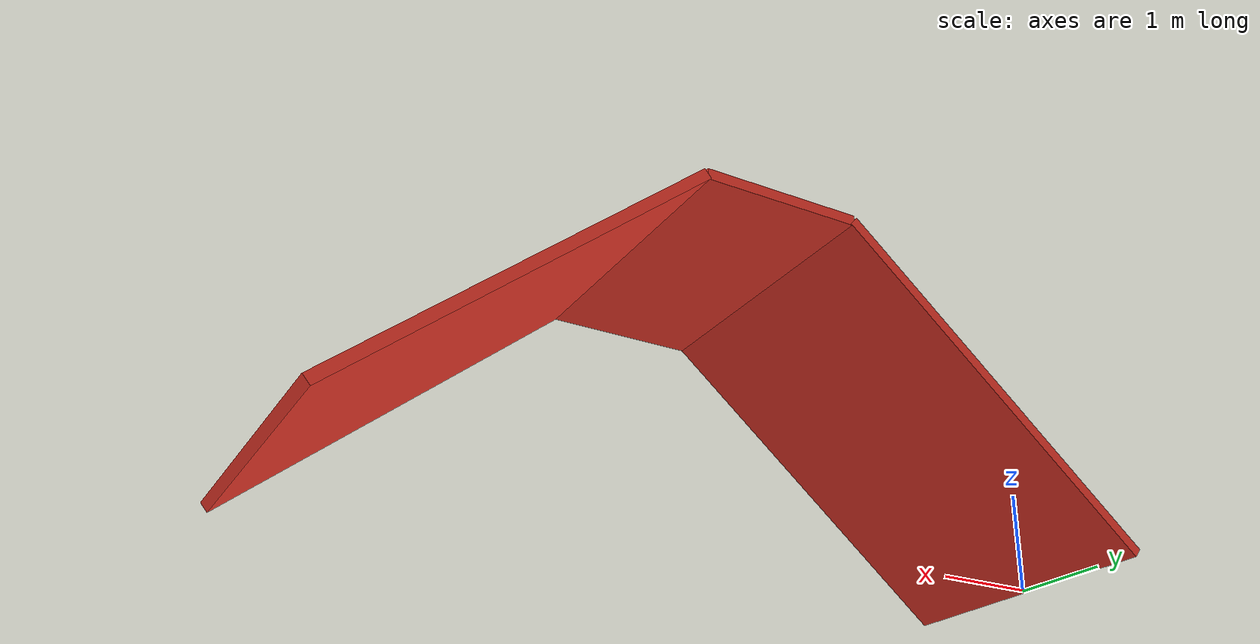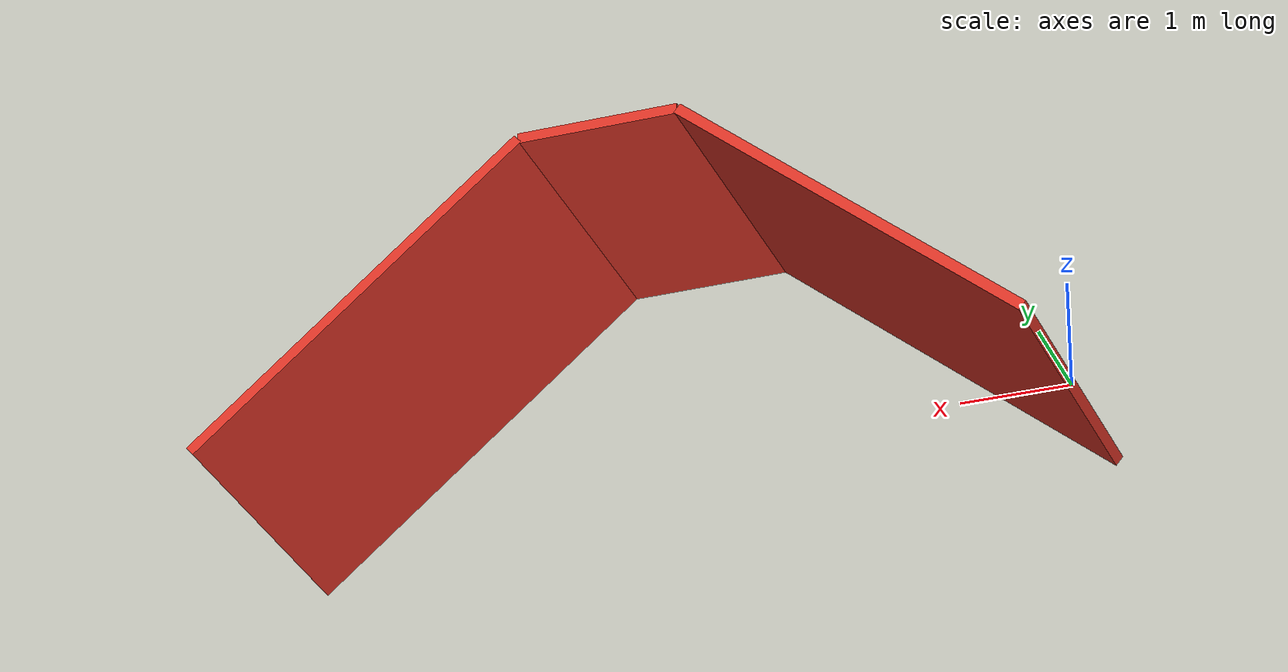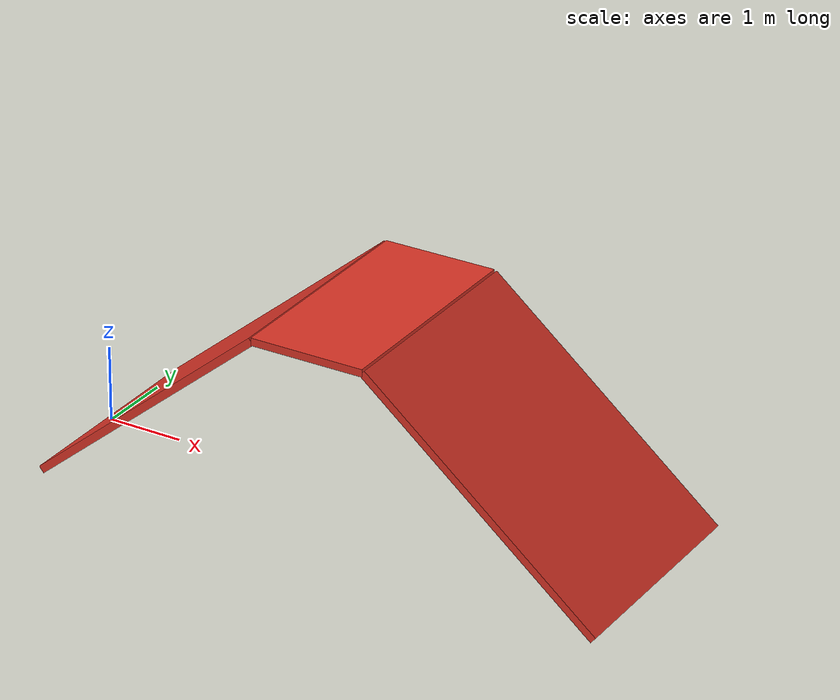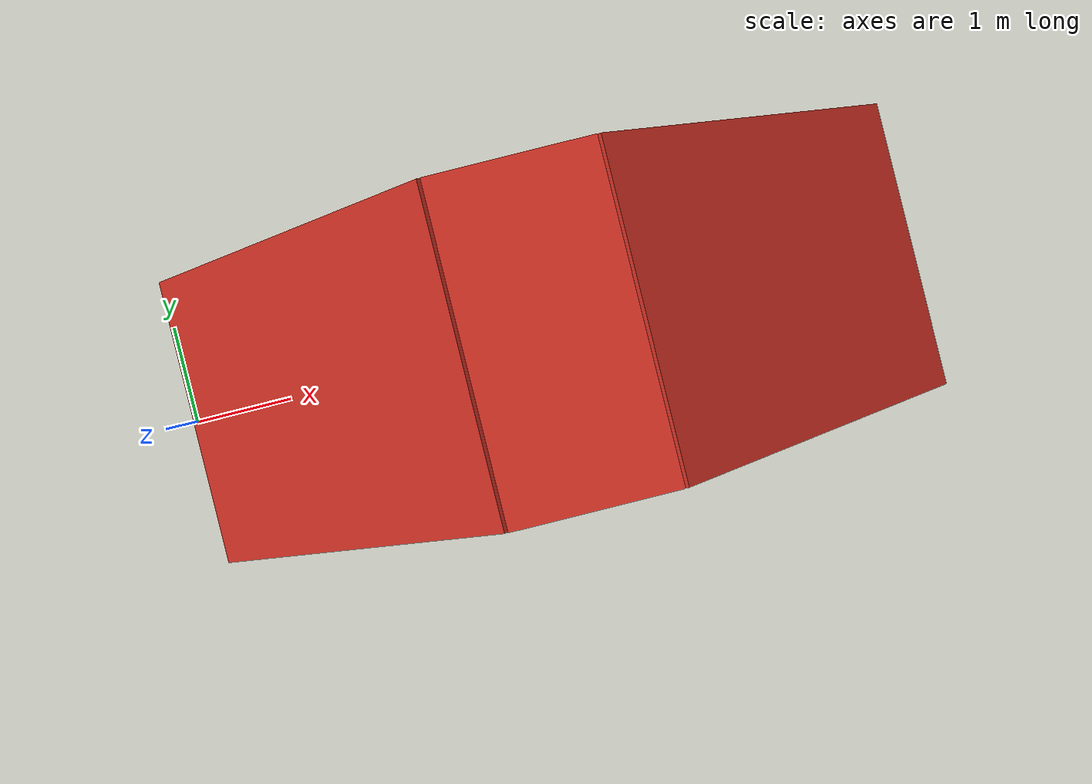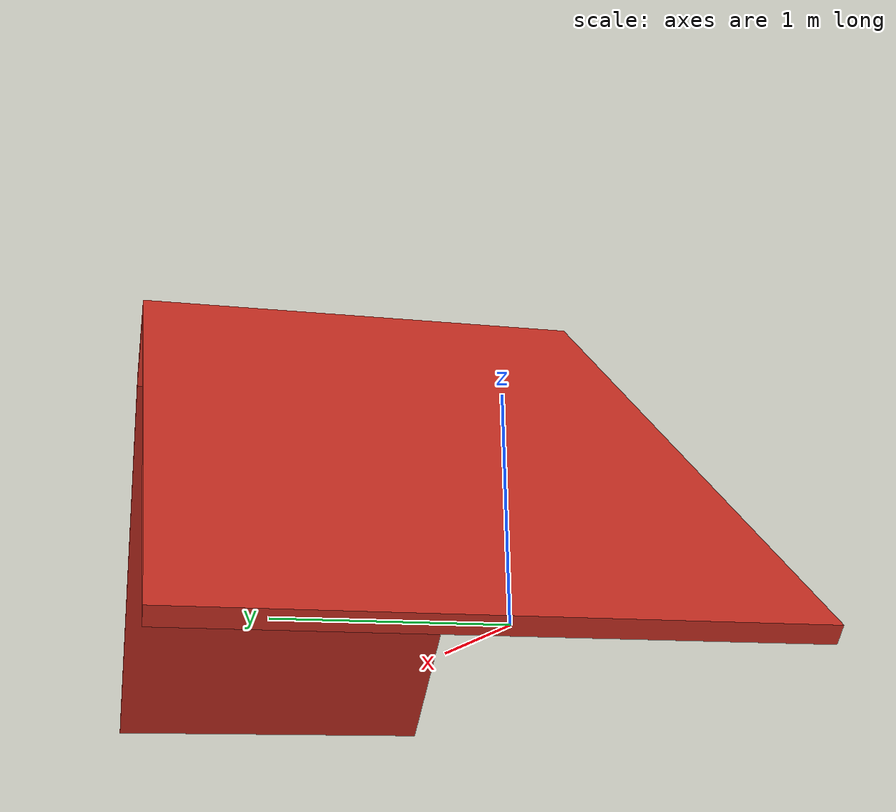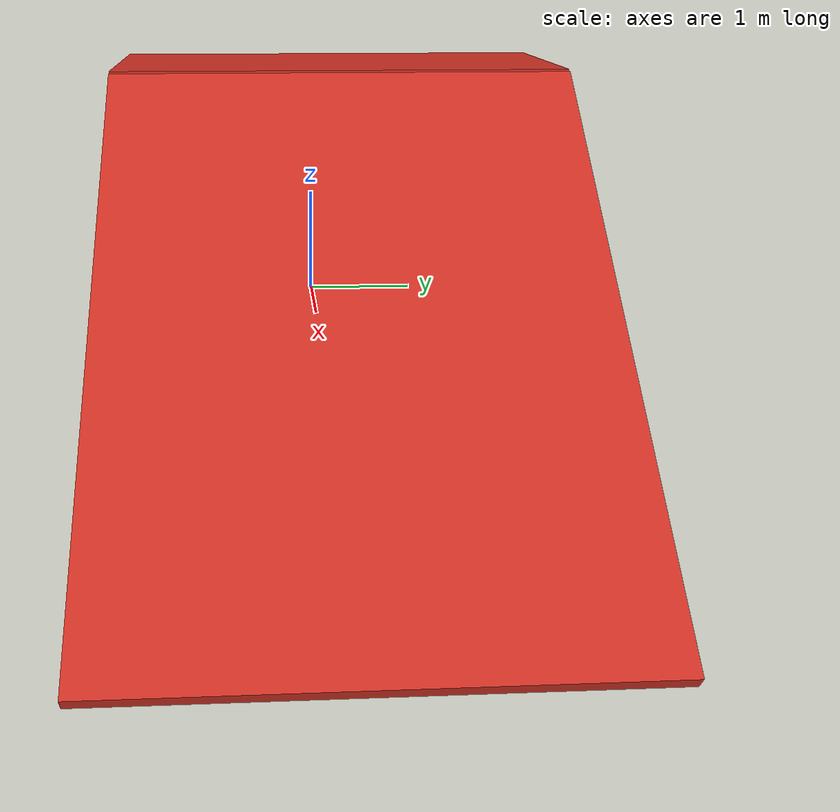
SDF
<?xml version="1.0" ?>
<sdf version="1.9">
  <model name="ramp_040">
    <static>true</static>
    <link name="link">

      <!-- 각도: 40.0도 / 경사면 길이: 4.0m / 높이(H)=2.5712m / 수평거리(D)=3.0642m -->

      <collision name="up_collision">
        <pose>1.5321 0 1.2856 0 -0.698132 0</pose>
        <geometry><box><size>4.0 3.0 0.1</size></box></geometry>
      </collision>
      <visual name="up_visual">
        <pose>1.5321 0 1.2856 0 -0.698132 0</pose>
        <geometry><box><size>4.0 3.0 0.1</size></box></geometry>
        <material><ambient>0.8 0.15 0.1 1</ambient><diffuse>0.85 0.2 0.15 1</diffuse></material>
      </visual>

      <collision name="flat_collision">
        <pose>3.8142 0 2.5712 0 0 0</pose>
        <geometry><box><size>1.5 3.0 0.1</size></box></geometry>
      </collision>
      <visual name="flat_visual">
        <pose>3.8142 0 2.5712 0 0 0</pose>
        <geometry><box><size>1.5 3.0 0.1</size></box></geometry>
        <material><ambient>0.8 0.15 0.1 1</ambient><diffuse>0.85 0.2 0.15 1</diffuse></material>
      </visual>

      <collision name="down_collision">
        <pose>6.0963 0 1.2856 0 0.698132 0</pose>
        <geometry><box><size>4.0 3.0 0.1</size></box></geometry>
      </collision>
      <visual name="down_visual">
        <pose>6.0963 0 1.2856 0 0.698132 0</pose>
        <geometry><box><size>4.0 3.0 0.1</size></box></geometry>
        <material><ambient>0.8 0.15 0.1 1</ambient><diffuse>0.85 0.2 0.15 1</diffuse></material>
      </visual>

    </link>
  </model>
</sdf>
